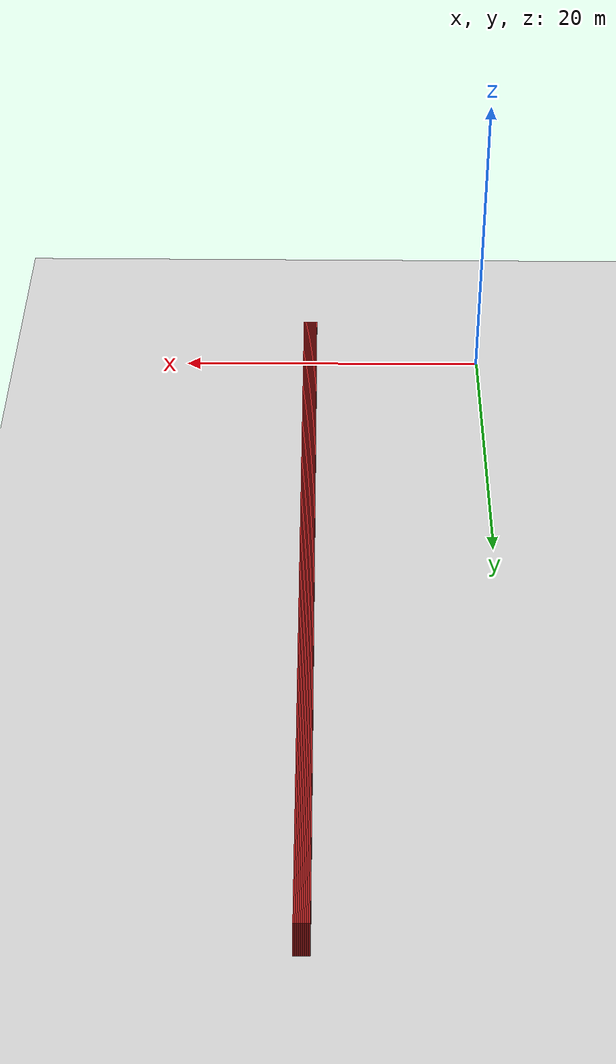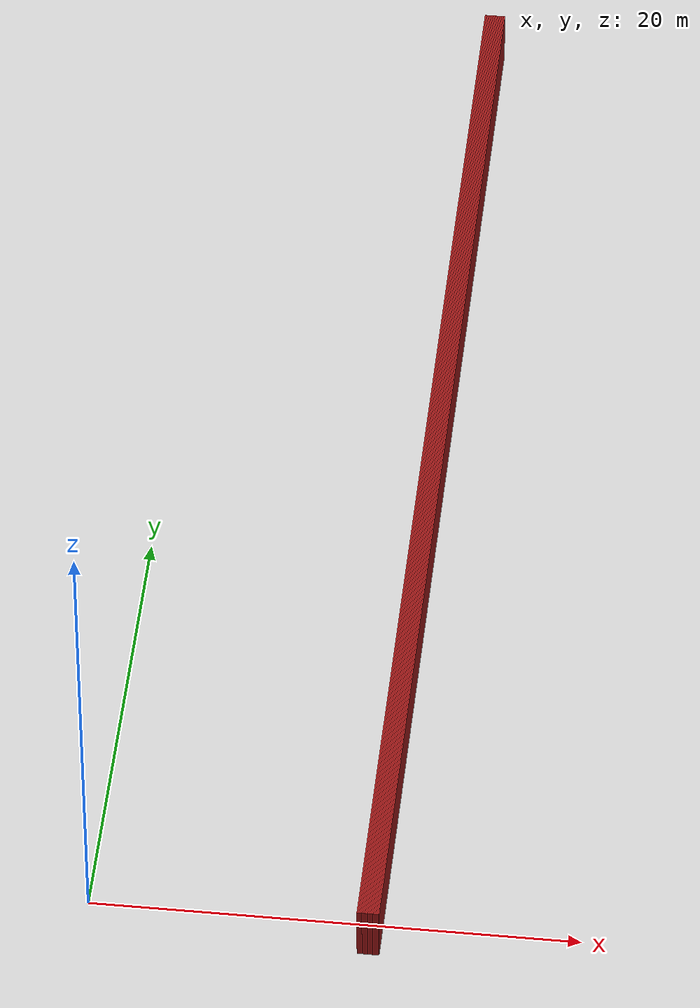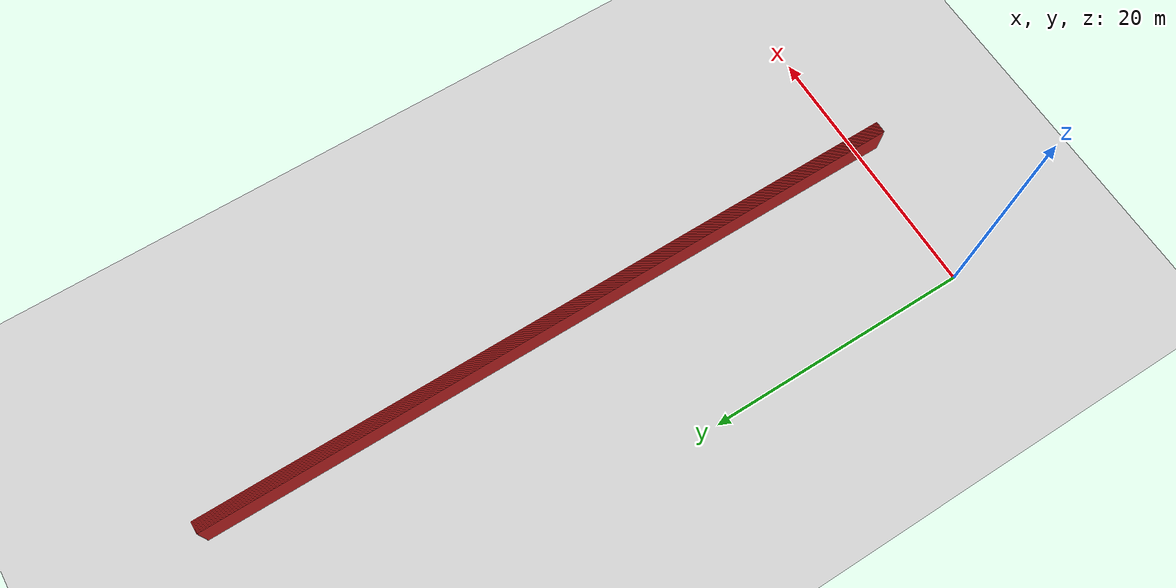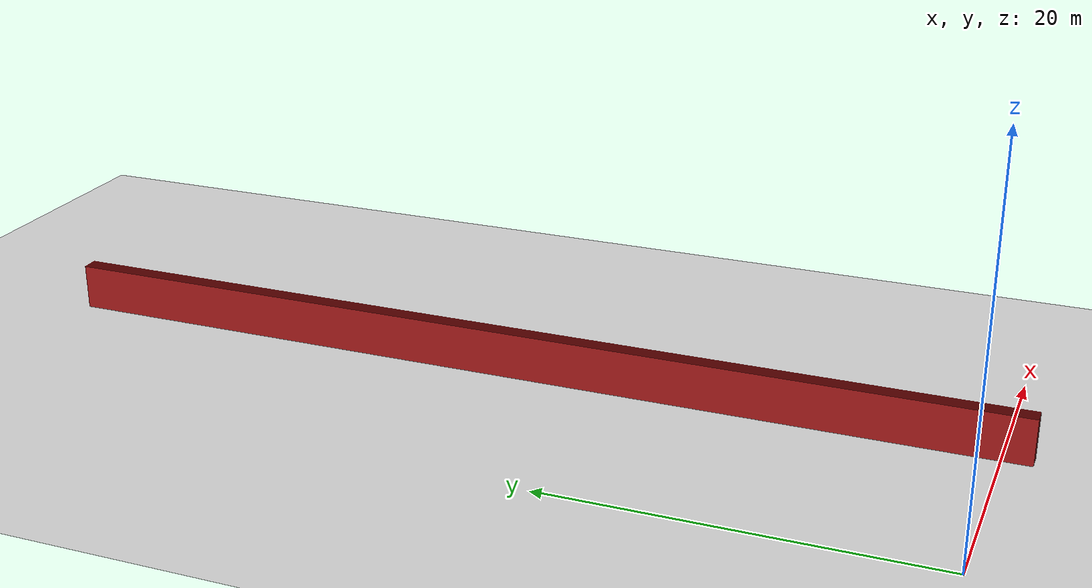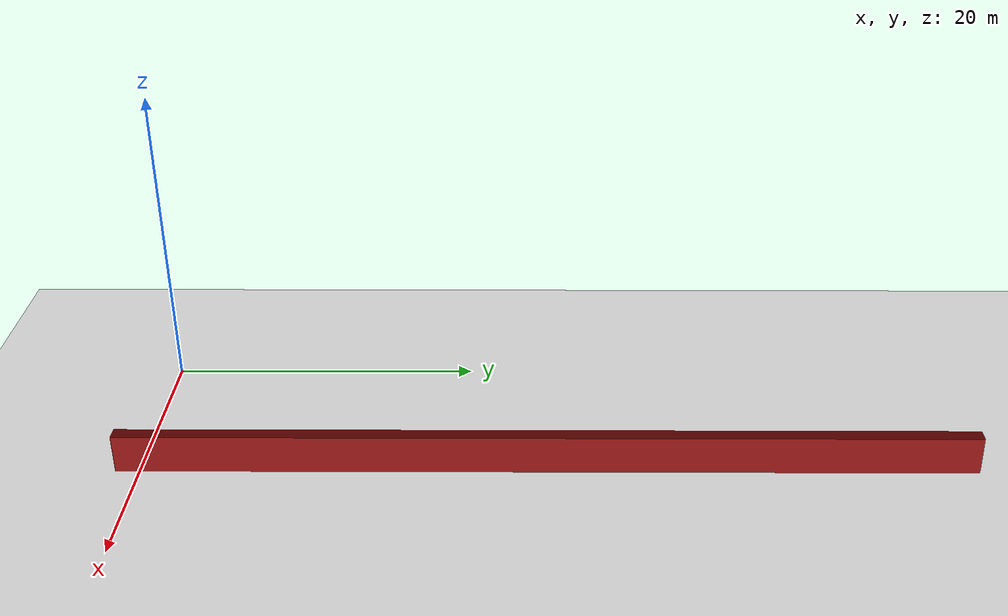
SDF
<sdf version="1.4">
 <world name="1_wall">
  <model name="ground_plane">
   <static>1</static>
   <link name="link">
    <collision name="collision">
     <geometry><plane><normal>0 0 1</normal><size>1000 1000</size></plane></geometry>
     <surface><friction><ode><mu>100</mu><mu2>50</mu2></ode></friction></surface>
    </collision>
    <visual name="visual">
     <cast_shadows>0</cast_shadows>
     <geometry><plane><normal>0 0 1</normal><size>10000 10000</size></plane></geometry>
     <material>
      <script><uri>file://media/materials/scripts/gazebo.material</uri><name>Gazebo/Grey</name></script>
     </material>
    </visual>
    <velocity_decay><linear>0</linear><angular>0</angular></velocity_decay>
   </link>
  </model>
  <model name="Wall_252">
   <static>1</static>
   <link name="Wall_252">
    <collision name="Wall_Collision_252">
     <geometry><box><size>53.65 0.05 2.5</size></box></geometry>
     <pose>0 0 1.25 0 -0 0</pose>
    </collision>
    <visual name="Wall_Visual_252">
     <pose>0 0 1.25 0 -0 0</pose>
     <geometry><box><size>53.65 0.05 2.5</size></box></geometry>
     <material>
      <script><uri>file://media/materials/scripts/gazebo.material</uri><name>Gazebo/Red</name></script>
     </material>
    </visual>
    <velocity_decay><linear>0</linear><angular>0</angular></velocity_decay>
    <pose>11.1 25.3 0 0 0 1.5707963267948966</pose>
   </link>
  </model>
  <model name="Wall_253">
   <static>1</static>
   <link name="Wall_253">
    <collision name="Wall_Collision_253">
     <geometry><box><size>53.65 0.05 2.5</size></box></geometry>
     <pose>0 0 1.25 0 -0 0</pose>
    </collision>
    <visual name="Wall_Visual_253">
     <pose>0 0 1.25 0 -0 0</pose>
     <geometry><box><size>53.65 0.05 2.5</size></box></geometry>
     <material>
      <script><uri>file://media/materials/scripts/gazebo.material</uri><name>Gazebo/Red</name></script>
     </material>
    </visual>
    <velocity_decay><linear>0</linear><angular>0</angular></velocity_decay>
    <pose>11.15 25.3 0 0 0 1.5707963267948966</pose>
   </link>
  </model>
  <model name="Wall_254">
   <static>1</static>
   <link name="Wall_254">
    <collision name="Wall_Collision_254">
     <geometry><box><size>53.65 0.05 2.5</size></box></geometry>
     <pose>0 0 1.25 0 -0 0</pose>
    </collision>
    <visual name="Wall_Visual_254">
     <pose>0 0 1.25 0 -0 0</pose>
     <geometry><box><size>53.65 0.05 2.5</size></box></geometry>
     <material>
      <script><uri>file://media/materials/scripts/gazebo.material</uri><name>Gazebo/Red</name></script>
     </material>
    </visual>
    <velocity_decay><linear>0</linear><angular>0</angular></velocity_decay>
    <pose>11.2 25.3 0 0 0 1.5707963267948966</pose>
   </link>
  </model>
  <model name="Wall_255">
   <static>1</static>
   <link name="Wall_255">
    <collision name="Wall_Collision_255">
     <geometry><box><size>53.65 0.05 2.5</size></box></geometry>
     <pose>0 0 1.25 0 -0 0</pose>
    </collision>
    <visual name="Wall_Visual_255">
     <pose>0 0 1.25 0 -0 0</pose>
     <geometry><box><size>53.65 0.05 2.5</size></box></geometry>
     <material>
      <script><uri>file://media/materials/scripts/gazebo.material</uri><name>Gazebo/Red</name></script>
     </material>
    </visual>
    <velocity_decay><linear>0</linear><angular>0</angular></velocity_decay>
    <pose>11.25 25.3 0 0 0 1.5707963267948966</pose>
   </link>
  </model>
  <model name="Wall_256">
   <static>1</static>
   <link name="Wall_256">
    <collision name="Wall_Collision_256">
     <geometry><box><size>53.65 0.05 2.5</size></box></geometry>
     <pose>0 0 1.25 0 -0 0</pose>
    </collision>
    <visual name="Wall_Visual_256">
     <pose>0 0 1.25 0 -0 0</pose>
     <geometry><box><size>53.65 0.05 2.5</size></box></geometry>
     <material>
      <script><uri>file://media/materials/scripts/gazebo.material</uri><name>Gazebo/Red</name></script>
     </material>
    </visual>
    <velocity_decay><linear>0</linear><angular>0</angular></velocity_decay>
    <pose>11.3 25.3 0 0 0 1.5707963267948966</pose>
   </link>
  </model>
  <model name="Wall_257">
   <static>1</static>
   <link name="Wall_257">
    <collision name="Wall_Collision_257">
     <geometry><box><size>53.65 0.05 2.5</size></box></geometry>
     <pose>0 0 1.25 0 -0 0</pose>
    </collision>
    <visual name="Wall_Visual_257">
     <pose>0 0 1.25 0 -0 0</pose>
     <geometry><box><size>53.65 0.05 2.5</size></box></geometry>
     <material>
      <script><uri>file://media/materials/scripts/gazebo.material</uri><name>Gazebo/Red</name></script>
     </material>
    </visual>
    <velocity_decay><linear>0</linear><angular>0</angular></velocity_decay>
    <pose>11.35 25.3 0 0 0 1.5707963267948966</pose>
   </link>
  </model>
  <model name="Wall_258">
   <static>1</static>
   <link name="Wall_258">
    <collision name="Wall_Collision_258">
     <geometry><box><size>53.65 0.05 2.5</size></box></geometry>
     <pose>0 0 1.25 0 -0 0</pose>
    </collision>
    <visual name="Wall_Visual_258">
     <pose>0 0 1.25 0 -0 0</pose>
     <geometry><box><size>53.65 0.05 2.5</size></box></geometry>
     <material>
      <script><uri>file://media/materials/scripts/gazebo.material</uri><name>Gazebo/Red</name></script>
     </material>
    </visual>
    <velocity_decay><linear>0</linear><angular>0</angular></velocity_decay>
    <pose>11.4 25.3 0 0 0 1.5707963267948966</pose>
   </link>
  </model>
  <model name="Wall_259">
   <static>1</static>
   <link name="Wall_259">
    <collision name="Wall_Collision_259">
     <geometry><box><size>53.65 0.05 2.5</size></box></geometry>
     <pose>0 0 1.25 0 -0 0</pose>
    </collision>
    <visual name="Wall_Visual_259">
     <pose>0 0 1.25 0 -0 0</pose>
     <geometry><box><size>53.65 0.05 2.5</size></box></geometry>
     <material>
      <script><uri>file://media/materials/scripts/gazebo.material</uri><name>Gazebo/Red</name></script>
     </material>
    </visual>
    <velocity_decay><linear>0</linear><angular>0</angular></velocity_decay>
    <pose>11.45 25.3 0 0 0 1.5707963267948966</pose>
   </link>
  </model>
  <model name="Wall_260">
   <static>1</static>
   <link name="Wall_260">
    <collision name="Wall_Collision_260">
     <geometry><box><size>53.65 0.05 2.5</size></box></geometry>
     <pose>0 0 1.25 0 -0 0</pose>
    </collision>
    <visual name="Wall_Visual_260">
     <pose>0 0 1.25 0 -0 0</pose>
     <geometry><box><size>53.65 0.05 2.5</size></box></geometry>
     <material>
      <script><uri>file://media/materials/scripts/gazebo.material</uri><name>Gazebo/Red</name></script>
     </material>
    </visual>
    <velocity_decay><linear>0</linear><angular>0</angular></velocity_decay>
    <pose>11.5 25.3 0 0 0 1.5707963267948966</pose>
   </link>
  </model>
  <model name="Wall_261">
   <static>1</static>
   <link name="Wall_261">
    <collision name="Wall_Collision_261">
     <geometry><box><size>53.65 0.05 2.5</size></box></geometry>
     <pose>0 0 1.25 0 -0 0</pose>
    </collision>
    <visual name="Wall_Visual_261">
     <pose>0 0 1.25 0 -0 0</pose>
     <geometry><box><size>53.65 0.05 2.5</size></box></geometry>
     <material>
      <script><uri>file://media/materials/scripts/gazebo.material</uri><name>Gazebo/Red</name></script>
     </material>
    </visual>
    <velocity_decay><linear>0</linear><angular>0</angular></velocity_decay>
    <pose>11.55 25.3 0 0 0 1.5707963267948966</pose>
   </link>
  </model>
  <model name="Wall_262">
   <static>1</static>
   <link name="Wall_262">
    <collision name="Wall_Collision_262">
     <geometry><box><size>53.65 0.05 2.5</size></box></geometry>
     <pose>0 0 1.25 0 -0 0</pose>
    </collision>
    <visual name="Wall_Visual_262">
     <pose>0 0 1.25 0 -0 0</pose>
     <geometry><box><size>53.65 0.05 2.5</size></box></geometry>
     <material>
      <script><uri>file://media/materials/scripts/gazebo.material</uri><name>Gazebo/Red</name></script>
     </material>
    </visual>
    <velocity_decay><linear>0</linear><angular>0</angular></velocity_decay>
    <pose>11.6 25.3 0 0 0 1.5707963267948966</pose>
   </link>
  </model>
  <model name="Wall_263">
   <static>1</static>
   <link name="Wall_263">
    <collision name="Wall_Collision_263">
     <geometry><box><size>53.65 0.05 2.5</size></box></geometry>
     <pose>0 0 1.25 0 -0 0</pose>
    </collision>
    <visual name="Wall_Visual_263">
     <pose>0 0 1.25 0 -0 0</pose>
     <geometry><box><size>53.65 0.05 2.5</size></box></geometry>
     <material>
      <script><uri>file://media/materials/scripts/gazebo.material</uri><name>Gazebo/Red</name></script>
     </material>
    </visual>
    <velocity_decay><linear>0</linear><angular>0</angular></velocity_decay>
    <pose>11.65 25.3 0 0 0 1.5707963267948966</pose>
   </link>
  </model>
  <model name="Wall_264">
   <static>1</static>
   <link name="Wall_264">
    <collision name="Wall_Collision_264">
     <geometry><box><size>53.65 0.05 2.5</size></box></geometry>
     <pose>0 0 1.25 0 -0 0</pose>
    </collision>
    <visual name="Wall_Visual_264">
     <pose>0 0 1.25 0 -0 0</pose>
     <geometry><box><size>53.65 0.05 2.5</size></box></geometry>
     <material>
      <script><uri>file://media/materials/scripts/gazebo.material</uri><name>Gazebo/Red</name></script>
     </material>
    </visual>
    <velocity_decay><linear>0</linear><angular>0</angular></velocity_decay>
    <pose>11.7 25.3 0 0 0 1.5707963267948966</pose>
   </link>
  </model>
  <model name="Wall_265">
   <static>1</static>
   <link name="Wall_265">
    <collision name="Wall_Collision_265">
     <geometry><box><size>53.65 0.05 2.5</size></box></geometry>
     <pose>0 0 1.25 0 -0 0</pose>
    </collision>
    <visual name="Wall_Visual_265">
     <pose>0 0 1.25 0 -0 0</pose>
     <geometry><box><size>53.65 0.05 2.5</size></box></geometry>
     <material>
      <script><uri>file://media/materials/scripts/gazebo.material</uri><name>Gazebo/Red</name></script>
     </material>
    </visual>
    <velocity_decay><linear>0</linear><angular>0</angular></velocity_decay>
    <pose>11.75 25.3 0 0 0 1.5707963267948966</pose>
   </link>
  </model>
  <model name="Wall_266">
   <static>1</static>
   <link name="Wall_266">
    <collision name="Wall_Collision_266">
     <geometry><box><size>53.65 0.05 2.5</size></box></geometry>
     <pose>0 0 1.25 0 -0 0</pose>
    </collision>
    <visual name="Wall_Visual_266">
     <pose>0 0 1.25 0 -0 0</pose>
     <geometry><box><size>53.65 0.05 2.5</size></box></geometry>
     <material>
      <script><uri>file://media/materials/scripts/gazebo.material</uri><name>Gazebo/Red</name></script>
     </material>
    </visual>
    <velocity_decay><linear>0</linear><angular>0</angular></velocity_decay>
    <pose>11.8 25.3 0 0 0 1.5707963267948966</pose>
   </link>
  </model>
  <model name="Wall_267">
   <static>1</static>
   <link name="Wall_267">
    <collision name="Wall_Collision_267">
     <geometry><box><size>53.65 0.05 2.5</size></box></geometry>
     <pose>0 0 1.25 0 -0 0</pose>
    </collision>
    <visual name="Wall_Visual_267">
     <pose>0 0 1.25 0 -0 0</pose>
     <geometry><box><size>53.65 0.05 2.5</size></box></geometry>
     <material>
      <script><uri>file://media/materials/scripts/gazebo.material</uri><name>Gazebo/Red</name></script>
     </material>
    </visual>
    <velocity_decay><linear>0</linear><angular>0</angular></velocity_decay>
    <pose>11.85 25.3 0 0 0 1.5707963267948966</pose>
   </link>
  </model>
  <model name="Wall_268">
   <static>1</static>
   <link name="Wall_268">
    <collision name="Wall_Collision_268">
     <geometry><box><size>53.65 0.05 2.5</size></box></geometry>
     <pose>0 0 1.25 0 -0 0</pose>
    </collision>
    <visual name="Wall_Visual_268">
     <pose>0 0 1.25 0 -0 0</pose>
     <geometry><box><size>53.65 0.05 2.5</size></box></geometry>
     <material>
      <script><uri>file://media/materials/scripts/gazebo.material</uri><name>Gazebo/Red</name></script>
     </material>
    </visual>
    <velocity_decay><linear>0</linear><angular>0</angular></velocity_decay>
    <pose>11.9 25.3 0 0 0 1.5707963267948966</pose>
   </link>
  </model>
  <model name="Wall_269">
   <static>1</static>
   <link name="Wall_269">
    <collision name="Wall_Collision_269">
     <geometry><box><size>53.65 0.05 2.5</size></box></geometry>
     <pose>0 0 1.25 0 -0 0</pose>
    </collision>
    <visual name="Wall_Visual_269">
     <pose>0 0 1.25 0 -0 0</pose>
     <geometry><box><size>53.65 0.05 2.5</size></box></geometry>
     <material>
      <script><uri>file://media/materials/scripts/gazebo.material</uri><name>Gazebo/Red</name></script>
     </material>
    </visual>
    <velocity_decay><linear>0</linear><angular>0</angular></velocity_decay>
    <pose>11.95 25.3 0 0 0 1.5707963267948966</pose>
   </link>
  </model>
 </world>
</sdf>
